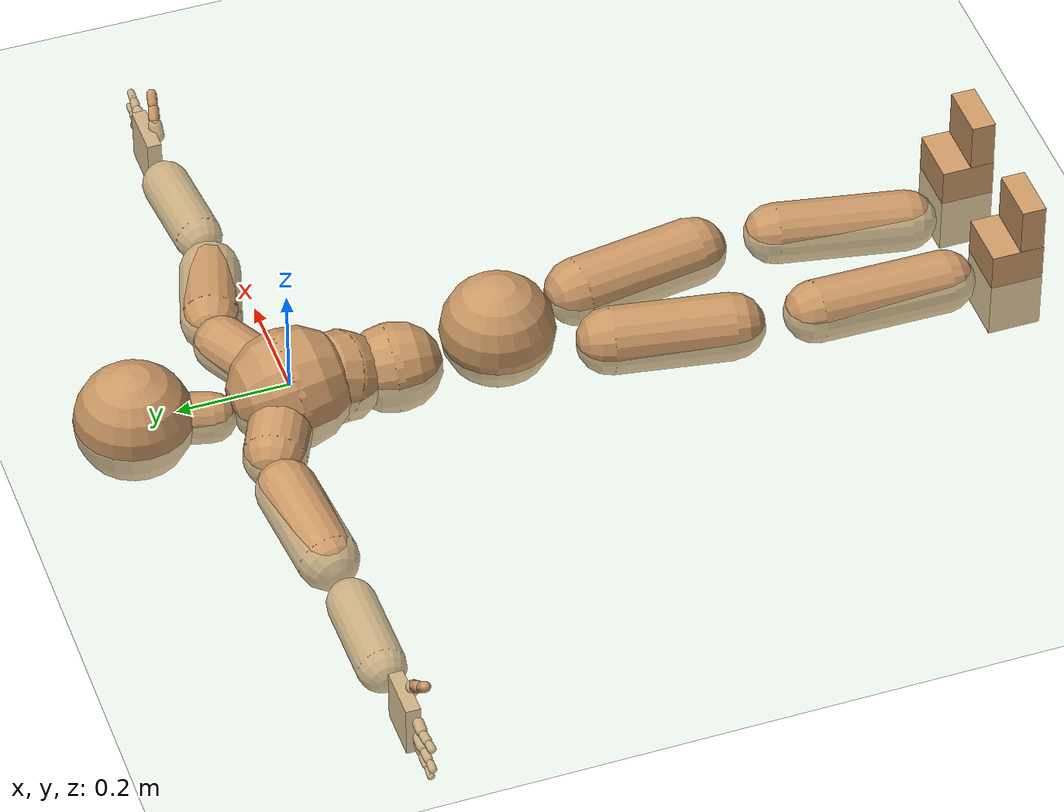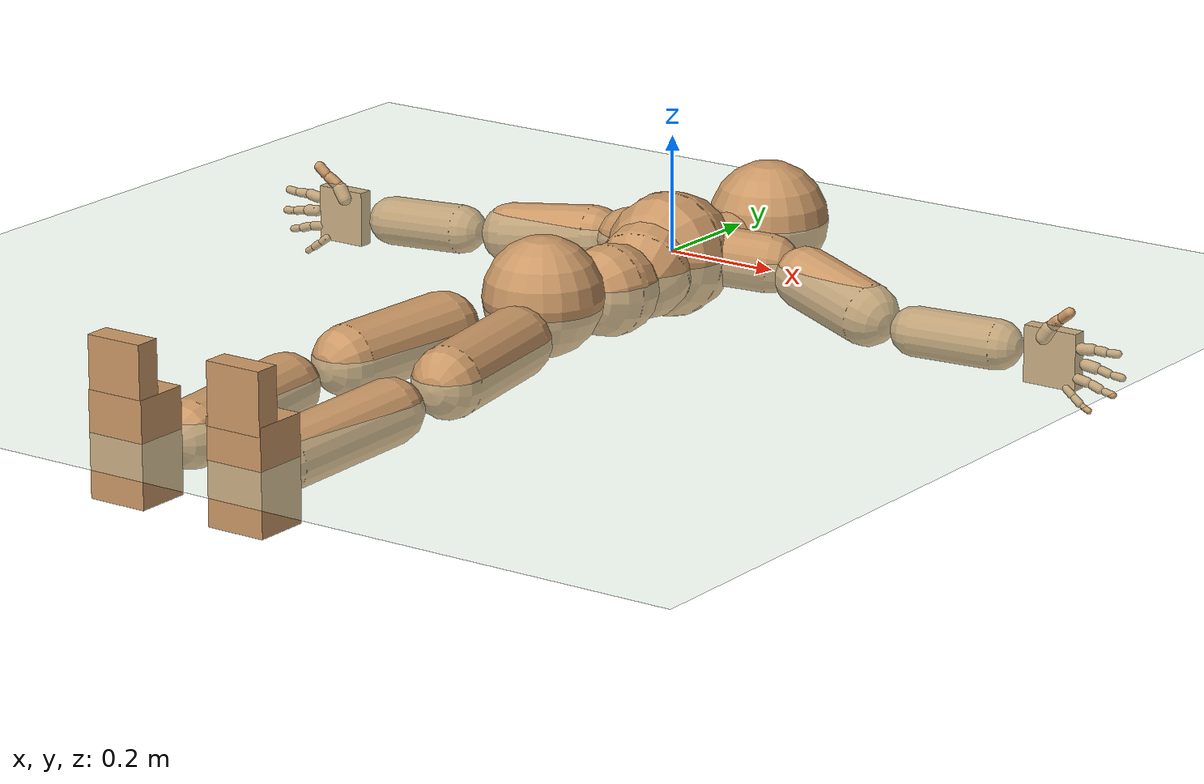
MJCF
<mujoco model="humanoid">
  <compiler coordinate="local"/>
  <default>
    <joint damping="0.0" armature="0.01" stiffness="0.0" limited="true"/>
    <geom conaffinity="1" condim="3" contype="7" margin="0.001" rgba="0.8 0.6 .4 1"/>
  </default>
  <asset>
    <texture type="skybox" builtin="gradient" rgb1=".4 .5 .6" rgb2="0 0 0" width="100" height="100"/>
    <texture builtin="flat" height="1278" mark="cross" markrgb="1 1 1" name="texgeom" random="0.01" rgb1="0.8 0.6 0.4" rgb2="0.8 0.6 0.4" type="cube" width="127"/>
    <texture builtin="checker" height="100" name="texplane" rgb1="0 0 0" rgb2="0.8 0.8 0.8" type="2d" width="100"/>
    <material name="MatPlane" reflectance="0.5" shininess="1" specular="1" texrepeat="60 60" texture="texplane"/>
    <material name="geom" texture="texgeom" texuniform="true"/>
  </asset>
  <worldbody>
    <light cutoff="100" diffuse="1 1 1" dir="-0 0 -1.3" directional="true" exponent="1" pos="0 0 1.3" specular=".1 .1 .1"/>
    <geom conaffinity="1" condim="3" name="floor" pos="0 0 0" rgba="0.8 0.9 0.8 1" size="100 100 .2" type="plane" material="MatPlane"/>
    <body name="Pelvis" pos="0.0029 -0.3711 0.013">
      <freejoint name="Pelvis"/>
      <geom type="sphere" contype="1" conaffinity="1" density="4629.6296296296305" size="0.1006" pos="0.0000 0.0000 0.0000" name="Pelvis"/>
      <body name="L_Hip" pos="0.0562 -0.0949 -0.024">
        <joint name="L_Hip_x" type="hinge" pos="0 0 0" axis="1 0 0" user="250 2.5 1 500 10 2" armature="0.01" range="-90.0000 90.0000" damping="0" stiffness="0"/>
        <joint name="L_Hip_y" type="hinge" pos="0 0 0" axis="0 1 0" user="250 2.5 1 500 10 2" armature="0.01" range="-90.0000 90.0000" damping="0" stiffness="0"/>
        <joint name="L_Hip_z" type="hinge" pos="0 0 0" axis="0 0 1" user="250 2.5 1 500 10 2" armature="0.01" range="-90.0000 90.0000" damping="0" stiffness="0"/>
        <geom type="capsule" contype="1" conaffinity="1" density="2040.816327" fromto="0.0113 -0.0738 -0.0008 0.0453 -0.2950 -0.0031" size="0.0597" name="L_Hip"/>
        <body name="L_Knee" pos="0.0567 -0.3688 -0.0039">
          <joint name="L_Knee_x" type="hinge" pos="0 0 0" axis="1 0 0" user="250 2.5 1 500 10 2" armature="0.01" range="-180.0000 180.0000" damping="0" stiffness="0"/>
          <joint name="L_Knee_y" type="hinge" pos="0 0 0" axis="0 1 0" user="250 2.5 1 500 10 2" armature="0.01" range="-5.6250 5.6250" damping="0" stiffness="0"/>
          <joint name="L_Knee_z" type="hinge" pos="0 0 0" axis="0 0 1" user="250 2.5 1 500 10 2" armature="0.01" range="-5.6250 5.6250" damping="0" stiffness="0"/>
          <geom type="capsule" contype="1" conaffinity="1" density="1234.567901" fromto="-0.0086 -0.0784 -0.0060 -0.0345 -0.3138 -0.0238" size="0.0536" name="L_Knee"/>
          <body name="L_Ankle" pos="-0.0431 -0.3922 -0.0298">
            <joint name="L_Ankle_x" type="hinge" pos="0 0 0" axis="1 0 0" user="150 2.5 1 500 10 2" armature="0.01" range="-90.0000 90.0000" damping="0" stiffness="0"/>
            <joint name="L_Ankle_y" type="hinge" pos="0 0 0" axis="0 1 0" user="150 2.5 1 500 10 2" armature="0.01" range="-90.0000 90.0000" damping="0" stiffness="0"/>
            <joint name="L_Ankle_z" type="hinge" pos="0 0 0" axis="0 0 1" user="150 2.5 1 500 10 2" armature="0.01" range="-90.0000 90.0000" damping="0" stiffness="0"/>
            <geom type="box" density="449.876288" pos="0.0418 -0.0276 0.0236" size="0.0513 0.0469 0.0868" quat="1.0000 0.0000 0.0000 0.0000" name="L_Ankle"/>
            <body name="L_Toe" pos="0.0485 -0.0566 0.1201">
              <joint name="L_Toe_x" type="hinge" pos="0 0 0" axis="1 0 0" user="150 1 1 500 1 1" armature="0.01" range="-90.0000 90.0000" damping="0" stiffness="0"/>
              <joint name="L_Toe_y" type="hinge" pos="0 0 0" axis="0 1 0" user="150 1 1 500 1 1" armature="0.01" range="-45.0000 45.0000" damping="0" stiffness="0"/>
              <joint name="L_Toe_z" type="hinge" pos="0 0 0" axis="0 0 1" user="150 1 1 500 1 1" armature="0.01" range="-45.0000 45.0000" damping="0" stiffness="0"/>
              <geom type="box" density="423.339018" pos="-0.0066 0.0034 0.0263" size="0.0493 0.0213 0.0509" quat="1.0000 0.0000 0.0000 0.0000" name="L_Toe"/>
            </body>
          </body>
        </body>
      </body>
      <body name="R_Hip" pos="-0.061 -0.1075 -0.0179">
        <joint name="R_Hip_x" type="hinge" pos="0 0 0" axis="1 0 0" user="250 2.5 1 500 10 2" armature="0.01" range="-90.0000 90.0000" damping="0" stiffness="0"/>
        <joint name="R_Hip_y" type="hinge" pos="0 0 0" axis="0 1 0" user="250 2.5 1 500 10 2" armature="0.01" range="-90.0000 90.0000" damping="0" stiffness="0"/>
        <joint name="R_Hip_z" type="hinge" pos="0 0 0" axis="0 0 1" user="250 2.5 1 500 10 2" armature="0.01" range="-90.0000 90.0000" damping="0" stiffness="0"/>
        <geom type="capsule" contype="1" conaffinity="1" density="2040.816327" fromto="-0.0092 -0.0702 -0.0025 -0.0369 -0.2808 -0.0099" size="0.0591" name="R_Hip"/>
        <body name="R_Knee" pos="-0.0461 -0.351 -0.0123">
          <joint name="R_Knee_x" type="hinge" pos="0 0 0" axis="1 0 0" user="250 2.5 1 500 10 2" armature="0.01" range="-180.0000 180.0000" damping="0" stiffness="0"/>
          <joint name="R_Knee_y" type="hinge" pos="0 0 0" axis="0 1 0" user="250 2.5 1 500 10 2" armature="0.01" range="-5.6250 5.6250" damping="0" stiffness="0"/>
          <joint name="R_Knee_z" type="hinge" pos="0 0 0" axis="0 0 1" user="250 2.5 1 500 10 2" armature="0.01" range="-5.6250 5.6250" damping="0" stiffness="0"/>
          <geom type="capsule" contype="1" conaffinity="1" density="1234.567901" fromto="0.0029 -0.0800 -0.0036 0.0116 -0.3198 -0.0146" size="0.0553" name="R_Knee"/>
          <body name="R_Ankle" pos="0.0146 -0.3998 -0.0182">
            <joint name="R_Ankle_x" type="hinge" pos="0 0 0" axis="1 0 0" user="150 1 1 500 10 2" armature="0.01" range="-90.0000 90.0000" damping="0" stiffness="0"/>
            <joint name="R_Ankle_y" type="hinge" pos="0 0 0" axis="0 1 0" user="150 1 1 500 10 2" armature="0.01" range="-90.0000 90.0000" damping="0" stiffness="0"/>
            <joint name="R_Ankle_z" type="hinge" pos="0 0 0" axis="0 0 1" user="150 1 1 500 10 2" armature="0.01" range="-90.0000 90.0000" damping="0" stiffness="0"/>
            <geom type="box" density="449.873689" pos="-0.0248 -0.0252 0.0144" size="0.0513 0.0469 0.0868" quat="1.0000 0.0000 0.0000 0.0000" name="R_Ankle"/>
            <body name="R_Toe" pos="-0.0397 -0.057 0.121">
              <joint name="R_Toe_x" type="hinge" pos="0 0 0" axis="1 0 0" user="150 1 1 500 1 1" armature="0.01" range="-90.0000 90.0000" damping="0" stiffness="0"/>
              <joint name="R_Toe_y" type="hinge" pos="0 0 0" axis="0 1 0" user="150 1 1 500 1 1" armature="0.01" range="-45.0000 45.0000" damping="0" stiffness="0"/>
              <joint name="R_Toe_z" type="hinge" pos="0 0 0" axis="0 0 1" user="150 1 1 500 1 1" armature="0.01" range="-45.0000 45.0000" damping="0" stiffness="0"/>
              <geom type="box" density="423.338574" pos="0.0149 0.0062 0.0161" size="0.0493 0.0213 0.0509" quat="1.0000 0.0000 0.0000 0.0000" name="R_Toe"/>
            </body>
          </body>
        </body>
      </body>
      <body name="Torso" pos="-0.0028 0.1134 -0.0303">
        <joint name="Torso_x" type="hinge" pos="0 0 0" axis="1 0 0" user="500 5 1 500 10 2" armature="0.01" range="-60.0000 60.0000" damping="0" stiffness="0"/>
        <joint name="Torso_y" type="hinge" pos="0 0 0" axis="0 1 0" user="500 5 1 500 10 2" armature="0.01" range="-60.0000 60.0000" damping="0" stiffness="0"/>
        <joint name="Torso_z" type="hinge" pos="0 0 0" axis="0 0 1" user="500 5 1 500 10 2" armature="0.01" range="-60.0000 60.0000" damping="0" stiffness="0"/>
        <geom type="capsule" contype="1" conaffinity="1" density="2040.816327" fromto="0.0046 0.0645 -0.0033 0.0057 0.0789 -0.0040" size="0.0774" name="Torso"/>
        <body name="Spine" pos="0.0103 0.1434 -0.0073">
          <joint name="Spine_x" type="hinge" pos="0 0 0" axis="1 0 0" user="500 5 1 500 10 2" armature="0.01" range="-60.0000 60.0000" damping="0" stiffness="0"/>
          <joint name="Spine_y" type="hinge" pos="0 0 0" axis="0 1 0" user="500 5 1 500 10 2" armature="0.01" range="-60.0000 60.0000" damping="0" stiffness="0"/>
          <joint name="Spine_z" type="hinge" pos="0 0 0" axis="0 0 1" user="500 5 1 500 10 2" armature="0.01" range="-60.0000 60.0000" damping="0" stiffness="0"/>
          <geom type="capsule" contype="1" conaffinity="1" density="2040.816327" fromto="-0.0051 0.0257 0.0120 -0.0062 0.0314 0.0147" size="0.0809" name="Spine"/>
          <body name="Chest" pos="-0.0114 0.0572 0.0268">
            <joint name="Chest_x" type="hinge" pos="0 0 0" axis="1 0 0" user="500 5 1 500 10 2" armature="0.01" range="-60.0000 60.0000" damping="0" stiffness="0"/>
            <joint name="Chest_y" type="hinge" pos="0 0 0" axis="0 1 0" user="500 5 1 500 10 2" armature="0.01" range="-60.0000 60.0000" damping="0" stiffness="0"/>
            <joint name="Chest_z" type="hinge" pos="0 0 0" axis="0 0 1" user="500 5 1 500 10 2" armature="0.01" range="-60.0000 60.0000" damping="0" stiffness="0"/>
            <geom type="capsule" contype="1" conaffinity="1" density="2040.816327" fromto="-0.0024 0.0510 -0.0064 -0.0029 0.0623 -0.0078" size="0.1057" name="Chest"/>
            <body name="Neck" pos="-0.0132 0.1674 -0.0277">
              <joint name="Neck_x" type="hinge" pos="0 0 0" axis="1 0 0" user="150 1 1 250 50 4" armature="0.01" range="-180.0000 180.0000" damping="0" stiffness="0"/>
              <joint name="Neck_y" type="hinge" pos="0 0 0" axis="0 1 0" user="150 1 1 250 50 4" armature="0.01" range="-180.0000 180.0000" damping="0" stiffness="0"/>
              <joint name="Neck_z" type="hinge" pos="0 0 0" axis="0 0 1" user="150 1 1 250 50 4" armature="0.01" range="-180.0000 180.0000" damping="0" stiffness="0"/>
              <geom type="capsule" contype="1" conaffinity="1" density="1000" fromto="0.0052 0.0321 0.0038 0.0210 0.1285 0.0152" size="0.044" name="Neck"/>
              <body name="Head" pos="0.0262 0.1606 0.019">
                <joint name="Head_x" type="hinge" pos="0 0 0" axis="1 0 0" user="150 1 1 250 50 4" armature="0.01" range="-90.0000 90.0000" damping="0" stiffness="0"/>
                <joint name="Head_y" type="hinge" pos="0 0 0" axis="0 1 0" user="150 1 1 250 50 4" armature="0.01" range="-90.0000 90.0000" damping="0" stiffness="0"/>
                <joint name="Head_z" type="hinge" pos="0 0 0" axis="0 0 1" user="150 1 1 250 50 4" armature="0.01" range="-90.0000 90.0000" damping="0" stiffness="0"/>
                <geom type="sphere" contype="1" conaffinity="1" density="1000" size="0.1034" pos="0.0000 0.0000 0.0000" name="Head"/>
              </body>
            </body>
            <body name="L_Thorax" pos="0.0475 0.0865 -0.0043">
              <joint name="L_Thorax_x" type="hinge" pos="0 0 0" axis="1 0 0" user="200 2 1 500 50 4" armature="0.01" range="-180.0000 180.0000" damping="0" stiffness="0"/>
              <joint name="L_Thorax_y" type="hinge" pos="0 0 0" axis="0 1 0" user="200 2 1 500 50 4" armature="0.01" range="-180.0000 180.0000" damping="0" stiffness="0"/>
              <joint name="L_Thorax_z" type="hinge" pos="0 0 0" axis="0 0 1" user="200 2 1 500 50 4" armature="0.01" range="-180.0000 180.0000" damping="0" stiffness="0"/>
              <geom type="capsule" contype="1" conaffinity="1" density="1000" fromto="0.0251 0.0112 -0.0030 0.1003 0.0447 -0.0121" size="0.0504" name="L_Thorax"/>
              <body name="L_Shoulder" pos="0.1254 0.0559 -0.0152">
                <joint name="L_Shoulder_x" type="hinge" pos="0 0 0" axis="1 0 0" user="200 2 1 500 50 4" armature="0.01" range="-180.0000 180.0000" damping="0" stiffness="0"/>
                <joint name="L_Shoulder_y" type="hinge" pos="0 0 0" axis="0 1 0" user="200 2 1 500 50 4" armature="0.01" range="-180.0000 180.0000" damping="0" stiffness="0"/>
                <joint name="L_Shoulder_z" type="hinge" pos="0 0 0" axis="0 0 1" user="200 2 1 500 50 4" armature="0.01" range="-180.0000 180.0000" damping="0" stiffness="0"/>
                <geom type="capsule" contype="1" conaffinity="1" density="1000" fromto="0.0497 -0.0140 -0.0089 0.1988 -0.0559 -0.0355" size="0.0536" name="L_Shoulder"/>
                <body name="L_Elbow" pos="0.2485 -0.0699 -0.0444">
                  <joint name="L_Elbow_x" type="hinge" pos="0 0 0" axis="1 0 0" user="150 1 1 150 10 2" armature="0.01" range="-720.0000 720.0000" damping="0" stiffness="0"/>
                  <joint name="L_Elbow_y" type="hinge" pos="0 0 0" axis="0 1 0" user="150 1 1 150 10 2" armature="0.01" range="-720.0000 720.0000" damping="0" stiffness="0"/>
                  <joint name="L_Elbow_z" type="hinge" pos="0 0 0" axis="0 0 1" user="150 1 1 150 10 2" armature="0.01" range="-720.0000 720.0000" damping="0" stiffness="0"/>
                  <geom type="capsule" contype="1" conaffinity="1" density="1000" fromto="0.0498 0.0046 0.0001 0.1994 0.0183 0.0004" size="0.042" name="L_Elbow"/>
                  <body name="L_Wrist" pos="0.2492 0.0229 0.0005">
                    <joint name="L_Wrist_x" type="hinge" pos="0 0 0" axis="1 0 0" user="100 1 1 150 1 1" armature="0.01" range="-180.0000 180.0000" damping="0" stiffness="0"/>
                    <joint name="L_Wrist_y" type="hinge" pos="0 0 0" axis="0 1 0" user="100 1 1 150 1 1" armature="0.01" range="-180.0000 180.0000" damping="0" stiffness="0"/>
                    <joint name="L_Wrist_z" type="hinge" pos="0 0 0" axis="0 0 1" user="100 1 1 150 1 1" armature="0.01" range="-180.0000 180.0000" damping="0" stiffness="0"/>
                    <geom type="box" density="1216.357114" pos="0.0522 -0.0012 -0.0026" size="0.0482 0.0128 0.0482" quat="1.0000 0.0000 0.0000 0.0000" name="L_Wrist"/>
                    <body name="L_Index1" pos="0.1014 -0.0081 0.0208">
                      <joint name="L_Index1_x" type="hinge" pos="0 0 0" axis="1 0 0" user="100 10 1 150" armature="0.01" range="-180.0000 180.0000" damping="0" stiffness="0"/>
                      <joint name="L_Index1_y" type="hinge" pos="0 0 0" axis="0 1 0" user="100 10 1 150" armature="0.01" range="-180.0000 180.0000" damping="0" stiffness="0"/>
                      <joint name="L_Index1_z" type="hinge" pos="0 0 0" axis="0 0 1" user="100 10 1 150" armature="0.01" range="-180.0000 180.0000" damping="0" stiffness="0"/>
                      <geom type="capsule" contype="1" conaffinity="1" density="1000" fromto="0.0065 0.0005 0.0006 0.0258 0.0019 0.0025" size="0.0096" name="L_Index1"/>
                      <body name="L_Index2" pos="0.0323 0.0024 0.0031">
                        <joint name="L_Index2_x" type="hinge" pos="0 0 0" axis="1 0 0" user="100 10 1 150" armature="0.01" range="-180.0000 180.0000" damping="0" stiffness="0"/>
                        <joint name="L_Index2_y" type="hinge" pos="0 0 0" axis="0 1 0" user="100 10 1 150" armature="0.01" range="-180.0000 180.0000" damping="0" stiffness="0"/>
                        <joint name="L_Index2_z" type="hinge" pos="0 0 0" axis="0 0 1" user="100 10 1 150" armature="0.01" range="-180.0000 180.0000" damping="0" stiffness="0"/>
                        <geom type="capsule" contype="1" conaffinity="1" density="1000" fromto="0.0046 -0.0005 -0.0000 0.0182 -0.0020 -0.0001" size="0.0079" name="L_Index2"/>
                        <body name="L_Index3" pos="0.0228 -0.0025 -0.0001">
                          <joint name="L_Index3_x" type="hinge" pos="0 0 0" axis="1 0 0" user="100 10 1 150" armature="0.01" range="-180.0000 180.0000" damping="0" stiffness="0"/>
                          <joint name="L_Index3_y" type="hinge" pos="0 0 0" axis="0 1 0" user="100 10 1 150" armature="0.01" range="-180.0000 180.0000" damping="0" stiffness="0"/>
                          <joint name="L_Index3_z" type="hinge" pos="0 0 0" axis="0 0 1" user="100 10 1 150" armature="0.01" range="-180.0000 180.0000" damping="0" stiffness="0"/>
                          <geom type="capsule" contype="1" conaffinity="1" density="1000" fromto="0.0050 -0.0001 0.0004 0.0198 -0.0004 0.0015" size="0.0067" name="L_Index3"/>
                        </body>
                      </body>
                    </body>
                    <body name="L_Middle1" pos="0.1091 -0.0057 -0.0036">
                      <joint name="L_Middle1_x" type="hinge" pos="0 0 0" axis="1 0 0" user="100 10 1 150" armature="0.01" range="-180.0000 180.0000" damping="0" stiffness="0"/>
                      <joint name="L_Middle1_y" type="hinge" pos="0 0 0" axis="0 1 0" user="100 10 1 150" armature="0.01" range="-180.0000 180.0000" damping="0" stiffness="0"/>
                      <joint name="L_Middle1_z" type="hinge" pos="0 0 0" axis="0 0 1" user="100 10 1 150" armature="0.01" range="-180.0000 180.0000" damping="0" stiffness="0"/>
                      <geom type="capsule" contype="1" conaffinity="1" density="1000" fromto="0.0062 0.0002 -0.0008 0.0248 0.0006 -0.0032" size="0.0098" name="L_Middle1"/>
                      <body name="L_Middle2" pos="0.031 0.0008 -0.004">
                        <joint name="L_Middle2_x" type="hinge" pos="0 0 0" axis="1 0 0" user="100 10 1 150" armature="0.01" range="-180.0000 180.0000" damping="0" stiffness="0"/>
                        <joint name="L_Middle2_y" type="hinge" pos="0 0 0" axis="0 1 0" user="100 10 1 150" armature="0.01" range="-180.0000 180.0000" damping="0" stiffness="0"/>
                        <joint name="L_Middle2_z" type="hinge" pos="0 0 0" axis="0 0 1" user="100 10 1 150" armature="0.01" range="-180.0000 180.0000" damping="0" stiffness="0"/>
                        <geom type="capsule" contype="1" conaffinity="1" density="1000" fromto="0.0047 -0.0004 -0.0008 0.0190 -0.0017 -0.0034" size="0.0073" name="L_Middle2"/>
                        <body name="L_Middle3" pos="0.0237 -0.0022 -0.0042">
                          <joint name="L_Middle3_x" type="hinge" pos="0 0 0" axis="1 0 0" user="100 10 1 150" armature="0.01" range="-180.0000 180.0000" damping="0" stiffness="0"/>
                          <joint name="L_Middle3_y" type="hinge" pos="0 0 0" axis="0 1 0" user="100 10 1 150" armature="0.01" range="-180.0000 180.0000" damping="0" stiffness="0"/>
                          <joint name="L_Middle3_z" type="hinge" pos="0 0 0" axis="0 0 1" user="100 10 1 150" armature="0.01" range="-180.0000 180.0000" damping="0" stiffness="0"/>
                          <geom type="capsule" contype="1" conaffinity="1" density="1000" fromto="0.0051 -0.0000 -0.0004 0.0206 -0.0001 -0.0018" size="0.0063" name="L_Middle3"/>
                        </body>
                      </body>
                    </body>
                    <body name="L_Pinky1" pos="0.0834 -0.0142 -0.0453">
                      <joint name="L_Pinky1_x" type="hinge" pos="0 0 0" axis="1 0 0" user="100 10 1 150" armature="0.01" range="-180.0000 180.0000" damping="0" stiffness="0"/>
                      <joint name="L_Pinky1_y" type="hinge" pos="0 0 0" axis="0 1 0" user="100 10 1 150" armature="0.01" range="-180.0000 180.0000" damping="0" stiffness="0"/>
                      <joint name="L_Pinky1_z" type="hinge" pos="0 0 0" axis="0 0 1" user="100 10 1 150" armature="0.01" range="-180.0000 180.0000" damping="0" stiffness="0"/>
                      <geom type="capsule" contype="1" conaffinity="1" density="1000" fromto="0.0032 -0.0003 -0.0025 0.0129 -0.0010 -0.0099" size="0.007" name="L_Pinky1"/>
                      <body name="L_Pinky2" pos="0.0161 -0.0013 -0.0124">
                        <joint name="L_Pinky2_x" type="hinge" pos="0 0 0" axis="1 0 0" user="100 10 1 150" armature="0.01" range="-180.0000 180.0000" damping="0" stiffness="0"/>
                        <joint name="L_Pinky2_y" type="hinge" pos="0 0 0" axis="0 1 0" user="100 10 1 150" armature="0.01" range="-180.0000 180.0000" damping="0" stiffness="0"/>
                        <joint name="L_Pinky2_z" type="hinge" pos="0 0 0" axis="0 0 1" user="100 10 1 150" armature="0.01" range="-180.0000 180.0000" damping="0" stiffness="0"/>
                        <geom type="capsule" contype="1" conaffinity="1" density="1000" fromto="0.0032 -0.0004 -0.0023 0.0128 -0.0015 -0.0091" size="0.0067" name="L_Pinky2"/>
                        <body name="L_Pinky3" pos="0.016 -0.0019 -0.0114">
                          <joint name="L_Pinky3_x" type="hinge" pos="0 0 0" axis="1 0 0" user="100 10 1 150" armature="0.01" range="-180.0000 180.0000" damping="0" stiffness="0"/>
                          <joint name="L_Pinky3_y" type="hinge" pos="0 0 0" axis="0 1 0" user="100 10 1 150" armature="0.01" range="-180.0000 180.0000" damping="0" stiffness="0"/>
                          <joint name="L_Pinky3_z" type="hinge" pos="0 0 0" axis="0 0 1" user="100 10 1 150" armature="0.01" range="-180.0000 180.0000" damping="0" stiffness="0"/>
                          <geom type="capsule" contype="1" conaffinity="1" density="1000" fromto="0.0036 0.0000 -0.0019 0.0144 0.0001 -0.0075" size="0.0051" name="L_Pinky3"/>
                        </body>
                      </body>
                    </body>
                    <body name="L_Ring1" pos="0.097 -0.0087 -0.0281">
                      <joint name="L_Ring1_x" type="hinge" pos="0 0 0" axis="1 0 0" user="100 10 1 150" armature="0.01" range="-180.0000 180.0000" damping="0" stiffness="0"/>
                      <joint name="L_Ring1_y" type="hinge" pos="0 0 0" axis="0 1 0" user="100 10 1 150" armature="0.01" range="-180.0000 180.0000" damping="0" stiffness="0"/>
                      <joint name="L_Ring1_z" type="hinge" pos="0 0 0" axis="0 0 1" user="100 10 1 150" armature="0.01" range="-180.0000 180.0000" damping="0" stiffness="0"/>
                      <geom type="capsule" contype="1" conaffinity="1" density="1000" fromto="0.0057 0.0003 -0.0011 0.0229 0.0012 -0.0043" size="0.0083" name="L_Ring1"/>
                      <body name="L_Ring2" pos="0.0286 0.0015 -0.0054">
                        <joint name="L_Ring2_x" type="hinge" pos="0 0 0" axis="1 0 0" user="100 10 1 150" armature="0.01" range="-180.0000 180.0000" damping="0" stiffness="0"/>
                        <joint name="L_Ring2_y" type="hinge" pos="0 0 0" axis="0 1 0" user="100 10 1 150" armature="0.01" range="-180.0000 180.0000" damping="0" stiffness="0"/>
                        <joint name="L_Ring2_z" type="hinge" pos="0 0 0" axis="0 0 1" user="100 10 1 150" armature="0.01" range="-180.0000 180.0000" damping="0" stiffness="0"/>
                        <geom type="capsule" contype="1" conaffinity="1" density="1000" fromto="0.0046 -0.0003 -0.0014 0.0186 -0.0013 -0.0058" size="0.0077" name="L_Ring2"/>
                        <body name="L_Ring3" pos="0.0232 -0.0016 -0.0072">
                          <joint name="L_Ring3_x" type="hinge" pos="0 0 0" axis="1 0 0" user="100 10 1 150" armature="0.01" range="-180.0000 180.0000" damping="0" stiffness="0"/>
                          <joint name="L_Ring3_y" type="hinge" pos="0 0 0" axis="0 1 0" user="100 10 1 150" armature="0.01" range="-180.0000 180.0000" damping="0" stiffness="0"/>
                          <joint name="L_Ring3_z" type="hinge" pos="0 0 0" axis="0 0 1" user="100 10 1 150" armature="0.01" range="-180.0000 180.0000" damping="0" stiffness="0"/>
                          <geom type="capsule" contype="1" conaffinity="1" density="1000" fromto="0.0050 0.0001 -0.0010 0.0202 0.0003 -0.0042" size="0.006" name="L_Ring3"/>
                        </body>
                      </body>
                    </body>
                    <body name="L_Thumb1" pos="0.0396 -0.0185 0.0274">
                      <joint name="L_Thumb1_x" type="hinge" pos="0 0 0" axis="1 0 0" user="100 10 1 150" armature="0.01" range="-180.0000 180.0000" damping="0" stiffness="0"/>
                      <joint name="L_Thumb1_y" type="hinge" pos="0 0 0" axis="0 1 0" user="100 10 1 150" armature="0.01" range="-180.0000 180.0000" damping="0" stiffness="0"/>
                      <joint name="L_Thumb1_z" type="hinge" pos="0 0 0" axis="0 0 1" user="100 10 1 150" armature="0.01" range="-180.0000 180.0000" damping="0" stiffness="0"/>
                      <geom type="capsule" contype="1" conaffinity="1" density="1000" fromto="0.0034 0.0003 0.0052 0.0135 0.0010 0.0209" size="0.0125" name="L_Thumb1"/>
                      <body name="L_Thumb2" pos="0.0169 0.0013 0.0261">
                        <joint name="L_Thumb2_x" type="hinge" pos="0 0 0" axis="1 0 0" user="100 10 1 150" armature="0.01" range="-180.0000 180.0000" damping="0" stiffness="0"/>
                        <joint name="L_Thumb2_y" type="hinge" pos="0 0 0" axis="0 1 0" user="100 10 1 150" armature="0.01" range="-180.0000 180.0000" damping="0" stiffness="0"/>
                        <joint name="L_Thumb2_z" type="hinge" pos="0 0 0" axis="0 0 1" user="100 10 1 150" armature="0.01" range="-180.0000 180.0000" damping="0" stiffness="0"/>
                        <geom type="capsule" contype="1" conaffinity="1" density="1000" fromto="0.0041 -0.0011 0.0032 0.0164 -0.0043 0.0128" size="0.01" name="L_Thumb2"/>
                        <body name="L_Thumb3" pos="0.0205 -0.0053 0.016">
                          <joint name="L_Thumb3_x" type="hinge" pos="0 0 0" axis="1 0 0" user="100 10 1 150" armature="0.01" range="-180.0000 180.0000" damping="0" stiffness="0"/>
                          <joint name="L_Thumb3_y" type="hinge" pos="0 0 0" axis="0 1 0" user="100 10 1 150" armature="0.01" range="-180.0000 180.0000" damping="0" stiffness="0"/>
                          <joint name="L_Thumb3_z" type="hinge" pos="0 0 0" axis="0 0 1" user="100 10 1 150" armature="0.01" range="-180.0000 180.0000" damping="0" stiffness="0"/>
                          <geom type="capsule" contype="1" conaffinity="1" density="1000" fromto="0.0045 -0.0007 0.0036 0.0180 -0.0027 0.0144" size="0.0091" name="L_Thumb3"/>
                        </body>
                      </body>
                    </body>
                  </body>
                </body>
              </body>
            </body>
            <body name="R_Thorax" pos="-0.0501 0.0858 -0.0104">
              <joint name="R_Thorax_x" type="hinge" pos="0 0 0" axis="1 0 0" user="200 2 1 150 10 2" armature="0.01" range="-180.0000 180.0000" damping="0" stiffness="0"/>
              <joint name="R_Thorax_y" type="hinge" pos="0 0 0" axis="0 1 0" user="200 2 1 150 10 2" armature="0.01" range="-180.0000 180.0000" damping="0" stiffness="0"/>
              <joint name="R_Thorax_z" type="hinge" pos="0 0 0" axis="0 0 1" user="200 2 1 150 10 2" armature="0.01" range="-180.0000 180.0000" damping="0" stiffness="0"/>
              <geom type="capsule" contype="1" conaffinity="1" density="1000" fromto="-0.0216 0.0103 -0.0025 -0.0866 0.0413 -0.0102" size="0.0553" name="R_Thorax"/>
              <body name="R_Shoulder" pos="-0.1082 0.0516 -0.0127">
                <joint name="R_Shoulder_x" type="hinge" pos="0 0 0" axis="1 0 0" user="200 2 1 250 10 2" armature="0.01" range="-180.0000 180.0000" damping="0" stiffness="0"/>
                <joint name="R_Shoulder_y" type="hinge" pos="0 0 0" axis="0 1 0" user="200 2 1 250 10 2" armature="0.01" range="-180.0000 180.0000" damping="0" stiffness="0"/>
                <joint name="R_Shoulder_z" type="hinge" pos="0 0 0" axis="0 0 1" user="200 2 1 250 10 2" armature="0.01" range="-180.0000 180.0000" damping="0" stiffness="0"/>
                <geom type="capsule" contype="1" conaffinity="1" density="1000" fromto="-0.0532 -0.0067 -0.0056 -0.2127 -0.0267 -0.0223" size="0.0535" name="R_Shoulder"/>
                <body name="R_Elbow" pos="-0.2659 -0.0333 -0.0279">
                  <joint name="R_Elbow_x" type="hinge" pos="0 0 0" axis="1 0 0" user="150 1 1 150 10 2" armature="0.01" range="-720.0000 720.0000" damping="0" stiffness="0"/>
                  <joint name="R_Elbow_y" type="hinge" pos="0 0 0" axis="0 1 0" user="150 1 1 150 10 2" armature="0.01" range="-720.0000 720.0000" damping="0" stiffness="0"/>
                  <joint name="R_Elbow_z" type="hinge" pos="0 0 0" axis="0 0 1" user="150 1 1 150 10 2" armature="0.01" range="-720.0000 720.0000" damping="0" stiffness="0"/>
                  <geom type="capsule" contype="1" conaffinity="1" density="1000" fromto="-0.0493 -0.0011 -0.0025 -0.1971 -0.0045 -0.0100" size="0.0423" name="R_Elbow"/>
                  <body name="R_Wrist" pos="-0.2464 -0.0056 -0.0125">
                    <joint name="R_Wrist_x" type="hinge" pos="0 0 0" axis="1 0 0" user="100 1 1 150 1 1" armature="0.01" range="-180.0000 180.0000" damping="0" stiffness="0"/>
                    <joint name="R_Wrist_y" type="hinge" pos="0 0 0" axis="0 1 0" user="100 1 1 150 1 1" armature="0.01" range="-180.0000 180.0000" damping="0" stiffness="0"/>
                    <joint name="R_Wrist_z" type="hinge" pos="0 0 0" axis="0 0 1" user="100 1 1 150 1 1" armature="0.01" range="-180.0000 180.0000" damping="0" stiffness="0"/>
                    <geom type="box" density="1243.920046" pos="-0.0535 -0.0044 -0.0024" size="0.0454 0.0128 0.0482" quat="1.0000 0.0000 0.0000 0.0000" name="R_Wrist"/>
                    <body name="R_Index1" pos="-0.0995 -0.0112 0.0209">
                      <joint name="R_Index1_x" type="hinge" pos="0 0 0" axis="1 0 0" user="100 10 1 150" armature="0.01" range="-180.0000 180.0000" damping="0" stiffness="0"/>
                      <joint name="R_Index1_y" type="hinge" pos="0 0 0" axis="0 1 0" user="100 10 1 150" armature="0.01" range="-180.0000 180.0000" damping="0" stiffness="0"/>
                      <joint name="R_Index1_z" type="hinge" pos="0 0 0" axis="0 0 1" user="100 10 1 150" armature="0.01" range="-180.0000 180.0000" damping="0" stiffness="0"/>
                      <geom type="capsule" contype="1" conaffinity="1" density="1000" fromto="-0.0065 0.0005 0.0006 -0.0258 0.0019 0.0025" size="0.0096" name="R_Index1"/>
                      <body name="R_Index2" pos="-0.0323 0.0024 0.0031">
                        <joint name="R_Index2_x" type="hinge" pos="0 0 0" axis="1 0 0" user="100 10 1 150" armature="0.01" range="-180.0000 180.0000" damping="0" stiffness="0"/>
                        <joint name="R_Index2_y" type="hinge" pos="0 0 0" axis="0 1 0" user="100 10 1 150" armature="0.01" range="-180.0000 180.0000" damping="0" stiffness="0"/>
                        <joint name="R_Index2_z" type="hinge" pos="0 0 0" axis="0 0 1" user="100 10 1 150" armature="0.01" range="-180.0000 180.0000" damping="0" stiffness="0"/>
                        <geom type="capsule" contype="1" conaffinity="1" density="1000" fromto="-0.0046 -0.0005 -0.0000 -0.0182 -0.0020 -0.0001" size="0.0079" name="R_Index2"/>
                        <body name="R_Index3" pos="-0.0228 -0.0025 -0.0001">
                          <joint name="R_Index3_x" type="hinge" pos="0 0 0" axis="1 0 0" user="100 10 1 150" armature="0.01" range="-180.0000 180.0000" damping="0" stiffness="0"/>
                          <joint name="R_Index3_y" type="hinge" pos="0 0 0" axis="0 1 0" user="100 10 1 150" armature="0.01" range="-180.0000 180.0000" damping="0" stiffness="0"/>
                          <joint name="R_Index3_z" type="hinge" pos="0 0 0" axis="0 0 1" user="100 10 1 150" armature="0.01" range="-180.0000 180.0000" damping="0" stiffness="0"/>
                          <geom type="capsule" contype="1" conaffinity="1" density="1000" fromto="-0.0042 -0.0001 0.0004 -0.0166 -0.0004 0.0015" size="0.007" name="R_Index3"/>
                        </body>
                      </body>
                    </body>
                    <body name="R_Middle1" pos="-0.1072 -0.0088 -0.0035">
                      <joint name="R_Middle1_x" type="hinge" pos="0 0 0" axis="1 0 0" user="100 10 1 150" armature="0.01" range="-180.0000 180.0000" damping="0" stiffness="0"/>
                      <joint name="R_Middle1_y" type="hinge" pos="0 0 0" axis="0 1 0" user="100 10 1 150" armature="0.01" range="-180.0000 180.0000" damping="0" stiffness="0"/>
                      <joint name="R_Middle1_z" type="hinge" pos="0 0 0" axis="0 0 1" user="100 10 1 150" armature="0.01" range="-180.0000 180.0000" damping="0" stiffness="0"/>
                      <geom type="capsule" contype="1" conaffinity="1" density="1000" fromto="-0.0062 0.0002 -0.0008 -0.0248 0.0006 -0.0032" size="0.0098" name="R_Middle1"/>
                      <body name="R_Middle2" pos="-0.031 0.0008 -0.004">
                        <joint name="R_Middle2_x" type="hinge" pos="0 0 0" axis="1 0 0" user="100 10 1 150" armature="0.01" range="-180.0000 180.0000" damping="0" stiffness="0"/>
                        <joint name="R_Middle2_y" type="hinge" pos="0 0 0" axis="0 1 0" user="100 10 1 150" armature="0.01" range="-180.0000 180.0000" damping="0" stiffness="0"/>
                        <joint name="R_Middle2_z" type="hinge" pos="0 0 0" axis="0 0 1" user="100 10 1 150" armature="0.01" range="-180.0000 180.0000" damping="0" stiffness="0"/>
                        <geom type="capsule" contype="1" conaffinity="1" density="1000" fromto="-0.0047 -0.0004 -0.0008 -0.0190 -0.0017 -0.0034" size="0.0073" name="R_Middle2"/>
                        <body name="R_Middle3" pos="-0.0237 -0.0022 -0.0042">
                          <joint name="R_Middle3_x" type="hinge" pos="0 0 0" axis="1 0 0" user="100 10 1 150" armature="0.01" range="-180.0000 180.0000" damping="0" stiffness="0"/>
                          <joint name="R_Middle3_y" type="hinge" pos="0 0 0" axis="0 1 0" user="100 10 1 150" armature="0.01" range="-180.0000 180.0000" damping="0" stiffness="0"/>
                          <joint name="R_Middle3_z" type="hinge" pos="0 0 0" axis="0 0 1" user="100 10 1 150" armature="0.01" range="-180.0000 180.0000" damping="0" stiffness="0"/>
                          <geom type="capsule" contype="1" conaffinity="1" density="1000" fromto="-0.0043 -0.0000 -0.0004 -0.0174 -0.0001 -0.0018" size="0.0066" name="R_Middle3"/>
                        </body>
                      </body>
                    </body>
                    <body name="R_Pinky1" pos="-0.0815 -0.0173 -0.0452">
                      <joint name="R_Pinky1_x" type="hinge" pos="0 0 0" axis="1 0 0" user="100 10 1 150" armature="0.01" range="-180.0000 180.0000" damping="0" stiffness="0"/>
                      <joint name="R_Pinky1_y" type="hinge" pos="0 0 0" axis="0 1 0" user="100 10 1 150" armature="0.01" range="-180.0000 180.0000" damping="0" stiffness="0"/>
                      <joint name="R_Pinky1_z" type="hinge" pos="0 0 0" axis="0 0 1" user="100 10 1 150" armature="0.01" range="-180.0000 180.0000" damping="0" stiffness="0"/>
                      <geom type="capsule" contype="1" conaffinity="1" density="1000" fromto="-0.0032 -0.0003 -0.0025 -0.0129 -0.0010 -0.0099" size="0.007" name="R_Pinky1"/>
                      <body name="R_Pinky2" pos="-0.0161 -0.0013 -0.0124">
                        <joint name="R_Pinky2_x" type="hinge" pos="0 0 0" axis="1 0 0" user="100 10 1 150" armature="0.01" range="-180.0000 180.0000" damping="0" stiffness="0"/>
                        <joint name="R_Pinky2_y" type="hinge" pos="0 0 0" axis="0 1 0" user="100 10 1 150" armature="0.01" range="-180.0000 180.0000" damping="0" stiffness="0"/>
                        <joint name="R_Pinky2_z" type="hinge" pos="0 0 0" axis="0 0 1" user="100 10 1 150" armature="0.01" range="-180.0000 180.0000" damping="0" stiffness="0"/>
                        <geom type="capsule" contype="1" conaffinity="1" density="1000" fromto="-0.0032 -0.0004 -0.0023 -0.0128 -0.0015 -0.0091" size="0.0067" name="R_Pinky2"/>
                        <body name="R_Pinky3" pos="-0.016 -0.0019 -0.0114">
                          <joint name="R_Pinky3_x" type="hinge" pos="0 0 0" axis="1 0 0" user="100 10 1 150" armature="0.01" range="-180.0000 180.0000" damping="0" stiffness="0"/>
                          <joint name="R_Pinky3_y" type="hinge" pos="0 0 0" axis="0 1 0" user="100 10 1 150" armature="0.01" range="-180.0000 180.0000" damping="0" stiffness="0"/>
                          <joint name="R_Pinky3_z" type="hinge" pos="0 0 0" axis="0 0 1" user="100 10 1 150" armature="0.01" range="-180.0000 180.0000" damping="0" stiffness="0"/>
                          <geom type="capsule" contype="1" conaffinity="1" density="1000" fromto="-0.0028 0.0000 -0.0019 -0.0112 0.0001 -0.0075" size="0.0054" name="R_Pinky3"/>
                        </body>
                      </body>
                    </body>
                    <body name="R_Ring1" pos="-0.0951 -0.0118 -0.028">
                      <joint name="R_Ring1_x" type="hinge" pos="0 0 0" axis="1 0 0" user="100 10 1 150" armature="0.01" range="-180.0000 180.0000" damping="0" stiffness="0"/>
                      <joint name="R_Ring1_y" type="hinge" pos="0 0 0" axis="0 1 0" user="100 10 1 150" armature="0.01" range="-180.0000 180.0000" damping="0" stiffness="0"/>
                      <joint name="R_Ring1_z" type="hinge" pos="0 0 0" axis="0 0 1" user="100 10 1 150" armature="0.01" range="-180.0000 180.0000" damping="0" stiffness="0"/>
                      <geom type="capsule" contype="1" conaffinity="1" density="1000" fromto="-0.0057 0.0003 -0.0011 -0.0229 0.0012 -0.0043" size="0.0083" name="R_Ring1"/>
                      <body name="R_Ring2" pos="-0.0286 0.0015 -0.0054">
                        <joint name="R_Ring2_x" type="hinge" pos="0 0 0" axis="1 0 0" user="100 10 1 150" armature="0.01" range="-180.0000 180.0000" damping="0" stiffness="0"/>
                        <joint name="R_Ring2_y" type="hinge" pos="0 0 0" axis="0 1 0" user="100 10 1 150" armature="0.01" range="-180.0000 180.0000" damping="0" stiffness="0"/>
                        <joint name="R_Ring2_z" type="hinge" pos="0 0 0" axis="0 0 1" user="100 10 1 150" armature="0.01" range="-180.0000 180.0000" damping="0" stiffness="0"/>
                        <geom type="capsule" contype="1" conaffinity="1" density="1000" fromto="-0.0046 -0.0003 -0.0014 -0.0186 -0.0013 -0.0058" size="0.0077" name="R_Ring2"/>
                        <body name="R_Ring3" pos="-0.0232 -0.0016 -0.0072">
                          <joint name="R_Ring3_x" type="hinge" pos="0 0 0" axis="1 0 0" user="100 10 1 150" armature="0.01" range="-180.0000 180.0000" damping="0" stiffness="0"/>
                          <joint name="R_Ring3_y" type="hinge" pos="0 0 0" axis="0 1 0" user="100 10 1 150" armature="0.01" range="-180.0000 180.0000" damping="0" stiffness="0"/>
                          <joint name="R_Ring3_z" type="hinge" pos="0 0 0" axis="0 0 1" user="100 10 1 150" armature="0.01" range="-180.0000 180.0000" damping="0" stiffness="0"/>
                          <geom type="capsule" contype="1" conaffinity="1" density="1000" fromto="-0.0042 0.0001 -0.0010 -0.0170 0.0003 -0.0042" size="0.0062" name="R_Ring3"/>
                        </body>
                      </body>
                    </body>
                    <body name="R_Thumb1" pos="-0.0377 -0.0217 0.0275">
                      <joint name="R_Thumb1_x" type="hinge" pos="0 0 0" axis="1 0 0" user="100 10 1 150" armature="0.01" range="-180.0000 180.0000" damping="0" stiffness="0"/>
                      <joint name="R_Thumb1_y" type="hinge" pos="0 0 0" axis="0 1 0" user="100 10 1 150" armature="0.01" range="-180.0000 180.0000" damping="0" stiffness="0"/>
                      <joint name="R_Thumb1_z" type="hinge" pos="0 0 0" axis="0 0 1" user="100 10 1 150" armature="0.01" range="-180.0000 180.0000" damping="0" stiffness="0"/>
                      <geom type="capsule" contype="1" conaffinity="1" density="1000" fromto="-0.0034 0.0003 0.0052 -0.0135 0.0010 0.0209" size="0.0125" name="R_Thumb1"/>
                      <body name="R_Thumb2" pos="-0.0169 0.0013 0.0261">
                        <joint name="R_Thumb2_x" type="hinge" pos="0 0 0" axis="1 0 0" user="100 10 1 150" armature="0.01" range="-180.0000 180.0000" damping="0" stiffness="0"/>
                        <joint name="R_Thumb2_y" type="hinge" pos="0 0 0" axis="0 1 0" user="100 10 1 150" armature="0.01" range="-180.0000 180.0000" damping="0" stiffness="0"/>
                        <joint name="R_Thumb2_z" type="hinge" pos="0 0 0" axis="0 0 1" user="100 10 1 150" armature="0.01" range="-180.0000 180.0000" damping="0" stiffness="0"/>
                        <geom type="capsule" contype="1" conaffinity="1" density="1000" fromto="-0.0041 -0.0011 0.0032 -0.0164 -0.0043 0.0128" size="0.01" name="R_Thumb2"/>
                        <body name="R_Thumb3" pos="-0.0205 -0.0053 0.016">
                          <joint name="R_Thumb3_x" type="hinge" pos="0 0 0" axis="1 0 0" user="100 10 1 150" armature="0.01" range="-180.0000 180.0000" damping="0" stiffness="0"/>
                          <joint name="R_Thumb3_y" type="hinge" pos="0 0 0" axis="0 1 0" user="100 10 1 150" armature="0.01" range="-180.0000 180.0000" damping="0" stiffness="0"/>
                          <joint name="R_Thumb3_z" type="hinge" pos="0 0 0" axis="0 0 1" user="100 10 1 150" armature="0.01" range="-180.0000 180.0000" damping="0" stiffness="0"/>
                          <geom type="capsule" contype="1" conaffinity="1" density="1000" fromto="-0.0037 -0.0007 0.0036 -0.0148 -0.0027 0.0144" size="0.0093" name="R_Thumb3"/>
                        </body>
                      </body>
                    </body>
                  </body>
                </body>
              </body>
            </body>
          </body>
        </body>
      </body>
    </body>
  </worldbody>
  <actuator>
    <motor name="L_Hip_x" joint="L_Hip_x" gear="1"/>
    <motor name="L_Hip_y" joint="L_Hip_y" gear="1"/>
    <motor name="L_Hip_z" joint="L_Hip_z" gear="1"/>
    <motor name="L_Knee_x" joint="L_Knee_x" gear="1"/>
    <motor name="L_Knee_y" joint="L_Knee_y" gear="1"/>
    <motor name="L_Knee_z" joint="L_Knee_z" gear="1"/>
    <motor name="L_Ankle_x" joint="L_Ankle_x" gear="1"/>
    <motor name="L_Ankle_y" joint="L_Ankle_y" gear="1"/>
    <motor name="L_Ankle_z" joint="L_Ankle_z" gear="1"/>
    <motor name="L_Toe_x" joint="L_Toe_x" gear="1"/>
    <motor name="L_Toe_y" joint="L_Toe_y" gear="1"/>
    <motor name="L_Toe_z" joint="L_Toe_z" gear="1"/>
    <motor name="R_Hip_x" joint="R_Hip_x" gear="1"/>
    <motor name="R_Hip_y" joint="R_Hip_y" gear="1"/>
    <motor name="R_Hip_z" joint="R_Hip_z" gear="1"/>
    <motor name="R_Knee_x" joint="R_Knee_x" gear="1"/>
    <motor name="R_Knee_y" joint="R_Knee_y" gear="1"/>
    <motor name="R_Knee_z" joint="R_Knee_z" gear="1"/>
    <motor name="R_Ankle_x" joint="R_Ankle_x" gear="1"/>
    <motor name="R_Ankle_y" joint="R_Ankle_y" gear="1"/>
    <motor name="R_Ankle_z" joint="R_Ankle_z" gear="1"/>
    <motor name="R_Toe_x" joint="R_Toe_x" gear="1"/>
    <motor name="R_Toe_y" joint="R_Toe_y" gear="1"/>
    <motor name="R_Toe_z" joint="R_Toe_z" gear="1"/>
    <motor name="Torso_x" joint="Torso_x" gear="1"/>
    <motor name="Torso_y" joint="Torso_y" gear="1"/>
    <motor name="Torso_z" joint="Torso_z" gear="1"/>
    <motor name="Spine_x" joint="Spine_x" gear="1"/>
    <motor name="Spine_y" joint="Spine_y" gear="1"/>
    <motor name="Spine_z" joint="Spine_z" gear="1"/>
    <motor name="Chest_x" joint="Chest_x" gear="1"/>
    <motor name="Chest_y" joint="Chest_y" gear="1"/>
    <motor name="Chest_z" joint="Chest_z" gear="1"/>
    <motor name="Neck_x" joint="Neck_x" gear="1"/>
    <motor name="Neck_y" joint="Neck_y" gear="1"/>
    <motor name="Neck_z" joint="Neck_z" gear="1"/>
    <motor name="Head_x" joint="Head_x" gear="1"/>
    <motor name="Head_y" joint="Head_y" gear="1"/>
    <motor name="Head_z" joint="Head_z" gear="1"/>
    <motor name="L_Thorax_x" joint="L_Thorax_x" gear="1"/>
    <motor name="L_Thorax_y" joint="L_Thorax_y" gear="1"/>
    <motor name="L_Thorax_z" joint="L_Thorax_z" gear="1"/>
    <motor name="L_Shoulder_x" joint="L_Shoulder_x" gear="1"/>
    <motor name="L_Shoulder_y" joint="L_Shoulder_y" gear="1"/>
    <motor name="L_Shoulder_z" joint="L_Shoulder_z" gear="1"/>
    <motor name="L_Elbow_x" joint="L_Elbow_x" gear="1"/>
    <motor name="L_Elbow_y" joint="L_Elbow_y" gear="1"/>
    <motor name="L_Elbow_z" joint="L_Elbow_z" gear="1"/>
    <motor name="L_Wrist_x" joint="L_Wrist_x" gear="1"/>
    <motor name="L_Wrist_y" joint="L_Wrist_y" gear="1"/>
    <motor name="L_Wrist_z" joint="L_Wrist_z" gear="1"/>
    <motor name="L_Index1_x" joint="L_Index1_x" gear="1"/>
    <motor name="L_Index1_y" joint="L_Index1_y" gear="1"/>
    <motor name="L_Index1_z" joint="L_Index1_z" gear="1"/>
    <motor name="L_Index2_x" joint="L_Index2_x" gear="1"/>
    <motor name="L_Index2_y" joint="L_Index2_y" gear="1"/>
    <motor name="L_Index2_z" joint="L_Index2_z" gear="1"/>
    <motor name="L_Index3_x" joint="L_Index3_x" gear="1"/>
    <motor name="L_Index3_y" joint="L_Index3_y" gear="1"/>
    <motor name="L_Index3_z" joint="L_Index3_z" gear="1"/>
    <motor name="L_Middle1_x" joint="L_Middle1_x" gear="1"/>
    <motor name="L_Middle1_y" joint="L_Middle1_y" gear="1"/>
    <motor name="L_Middle1_z" joint="L_Middle1_z" gear="1"/>
    <motor name="L_Middle2_x" joint="L_Middle2_x" gear="1"/>
    <motor name="L_Middle2_y" joint="L_Middle2_y" gear="1"/>
    <motor name="L_Middle2_z" joint="L_Middle2_z" gear="1"/>
    <motor name="L_Middle3_x" joint="L_Middle3_x" gear="1"/>
    <motor name="L_Middle3_y" joint="L_Middle3_y" gear="1"/>
    <motor name="L_Middle3_z" joint="L_Middle3_z" gear="1"/>
    <motor name="L_Pinky1_x" joint="L_Pinky1_x" gear="1"/>
    <motor name="L_Pinky1_y" joint="L_Pinky1_y" gear="1"/>
    <motor name="L_Pinky1_z" joint="L_Pinky1_z" gear="1"/>
    <motor name="L_Pinky2_x" joint="L_Pinky2_x" gear="1"/>
    <motor name="L_Pinky2_y" joint="L_Pinky2_y" gear="1"/>
    <motor name="L_Pinky2_z" joint="L_Pinky2_z" gear="1"/>
    <motor name="L_Pinky3_x" joint="L_Pinky3_x" gear="1"/>
    <motor name="L_Pinky3_y" joint="L_Pinky3_y" gear="1"/>
    <motor name="L_Pinky3_z" joint="L_Pinky3_z" gear="1"/>
    <motor name="L_Ring1_x" joint="L_Ring1_x" gear="1"/>
    <motor name="L_Ring1_y" joint="L_Ring1_y" gear="1"/>
    <motor name="L_Ring1_z" joint="L_Ring1_z" gear="1"/>
    <motor name="L_Ring2_x" joint="L_Ring2_x" gear="1"/>
    <motor name="L_Ring2_y" joint="L_Ring2_y" gear="1"/>
    <motor name="L_Ring2_z" joint="L_Ring2_z" gear="1"/>
    <motor name="L_Ring3_x" joint="L_Ring3_x" gear="1"/>
    <motor name="L_Ring3_y" joint="L_Ring3_y" gear="1"/>
    <motor name="L_Ring3_z" joint="L_Ring3_z" gear="1"/>
    <motor name="L_Thumb1_x" joint="L_Thumb1_x" gear="1"/>
    <motor name="L_Thumb1_y" joint="L_Thumb1_y" gear="1"/>
    <motor name="L_Thumb1_z" joint="L_Thumb1_z" gear="1"/>
    <motor name="L_Thumb2_x" joint="L_Thumb2_x" gear="1"/>
    <motor name="L_Thumb2_y" joint="L_Thumb2_y" gear="1"/>
    <motor name="L_Thumb2_z" joint="L_Thumb2_z" gear="1"/>
    <motor name="L_Thumb3_x" joint="L_Thumb3_x" gear="1"/>
    <motor name="L_Thumb3_y" joint="L_Thumb3_y" gear="1"/>
    <motor name="L_Thumb3_z" joint="L_Thumb3_z" gear="1"/>
    <motor name="R_Thorax_x" joint="R_Thorax_x" gear="1"/>
    <motor name="R_Thorax_y" joint="R_Thorax_y" gear="1"/>
    <motor name="R_Thorax_z" joint="R_Thorax_z" gear="1"/>
    <motor name="R_Shoulder_x" joint="R_Shoulder_x" gear="1"/>
    <motor name="R_Shoulder_y" joint="R_Shoulder_y" gear="1"/>
    <motor name="R_Shoulder_z" joint="R_Shoulder_z" gear="1"/>
    <motor name="R_Elbow_x" joint="R_Elbow_x" gear="1"/>
    <motor name="R_Elbow_y" joint="R_Elbow_y" gear="1"/>
    <motor name="R_Elbow_z" joint="R_Elbow_z" gear="1"/>
    <motor name="R_Wrist_x" joint="R_Wrist_x" gear="1"/>
    <motor name="R_Wrist_y" joint="R_Wrist_y" gear="1"/>
    <motor name="R_Wrist_z" joint="R_Wrist_z" gear="1"/>
    <motor name="R_Index1_x" joint="R_Index1_x" gear="1"/>
    <motor name="R_Index1_y" joint="R_Index1_y" gear="1"/>
    <motor name="R_Index1_z" joint="R_Index1_z" gear="1"/>
    <motor name="R_Index2_x" joint="R_Index2_x" gear="1"/>
    <motor name="R_Index2_y" joint="R_Index2_y" gear="1"/>
    <motor name="R_Index2_z" joint="R_Index2_z" gear="1"/>
    <motor name="R_Index3_x" joint="R_Index3_x" gear="1"/>
    <motor name="R_Index3_y" joint="R_Index3_y" gear="1"/>
    <motor name="R_Index3_z" joint="R_Index3_z" gear="1"/>
    <motor name="R_Middle1_x" joint="R_Middle1_x" gear="1"/>
    <motor name="R_Middle1_y" joint="R_Middle1_y" gear="1"/>
    <motor name="R_Middle1_z" joint="R_Middle1_z" gear="1"/>
    <motor name="R_Middle2_x" joint="R_Middle2_x" gear="1"/>
    <motor name="R_Middle2_y" joint="R_Middle2_y" gear="1"/>
    <motor name="R_Middle2_z" joint="R_Middle2_z" gear="1"/>
    <motor name="R_Middle3_x" joint="R_Middle3_x" gear="1"/>
    <motor name="R_Middle3_y" joint="R_Middle3_y" gear="1"/>
    <motor name="R_Middle3_z" joint="R_Middle3_z" gear="1"/>
    <motor name="R_Pinky1_x" joint="R_Pinky1_x" gear="1"/>
    <motor name="R_Pinky1_y" joint="R_Pinky1_y" gear="1"/>
    <motor name="R_Pinky1_z" joint="R_Pinky1_z" gear="1"/>
    <motor name="R_Pinky2_x" joint="R_Pinky2_x" gear="1"/>
    <motor name="R_Pinky2_y" joint="R_Pinky2_y" gear="1"/>
    <motor name="R_Pinky2_z" joint="R_Pinky2_z" gear="1"/>
    <motor name="R_Pinky3_x" joint="R_Pinky3_x" gear="1"/>
    <motor name="R_Pinky3_y" joint="R_Pinky3_y" gear="1"/>
    <motor name="R_Pinky3_z" joint="R_Pinky3_z" gear="1"/>
    <motor name="R_Ring1_x" joint="R_Ring1_x" gear="1"/>
    <motor name="R_Ring1_y" joint="R_Ring1_y" gear="1"/>
    <motor name="R_Ring1_z" joint="R_Ring1_z" gear="1"/>
    <motor name="R_Ring2_x" joint="R_Ring2_x" gear="1"/>
    <motor name="R_Ring2_y" joint="R_Ring2_y" gear="1"/>
    <motor name="R_Ring2_z" joint="R_Ring2_z" gear="1"/>
    <motor name="R_Ring3_x" joint="R_Ring3_x" gear="1"/>
    <motor name="R_Ring3_y" joint="R_Ring3_y" gear="1"/>
    <motor name="R_Ring3_z" joint="R_Ring3_z" gear="1"/>
    <motor name="R_Thumb1_x" joint="R_Thumb1_x" gear="1"/>
    <motor name="R_Thumb1_y" joint="R_Thumb1_y" gear="1"/>
    <motor name="R_Thumb1_z" joint="R_Thumb1_z" gear="1"/>
    <motor name="R_Thumb2_x" joint="R_Thumb2_x" gear="1"/>
    <motor name="R_Thumb2_y" joint="R_Thumb2_y" gear="1"/>
    <motor name="R_Thumb2_z" joint="R_Thumb2_z" gear="1"/>
    <motor name="R_Thumb3_x" joint="R_Thumb3_x" gear="1"/>
    <motor name="R_Thumb3_y" joint="R_Thumb3_y" gear="1"/>
    <motor name="R_Thumb3_z" joint="R_Thumb3_z" gear="1"/>
  </actuator>
  <contact>
    <exclude body1="Torso" body2="Chest"/>
    <exclude body1="Head" body2="Chest"/>
    <exclude body1="R_Knee" body2="R_Toe"/>
    <exclude body1="R_Knee" body2="L_Ankle"/>
    <exclude body1="R_Knee" body2="L_Toe"/>
    <exclude body1="L_Knee" body2="L_Toe"/>
    <exclude body1="L_Knee" body2="R_Ankle"/>
    <exclude body1="L_Knee" body2="R_Toe"/>
    <exclude body1="L_Shoulder" body2="Chest"/>
    <exclude body1="R_Shoulder" body2="Chest"/>
  </contact>
  <sensor/>
  <size njmax="700" nconmax="700"/>
</mujoco>
